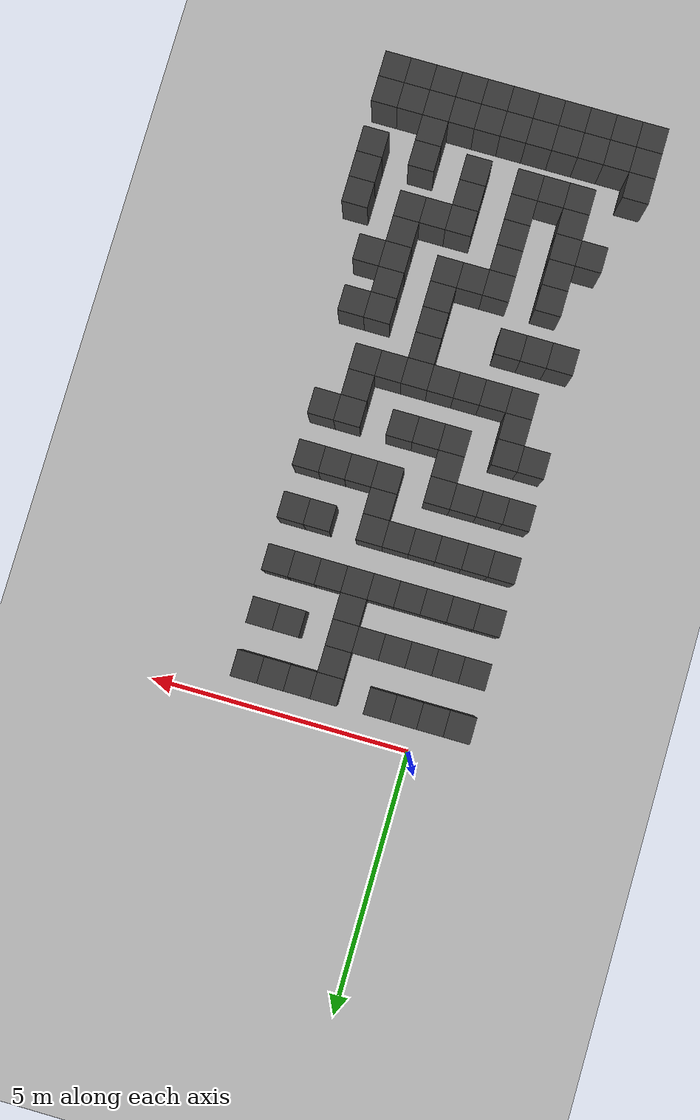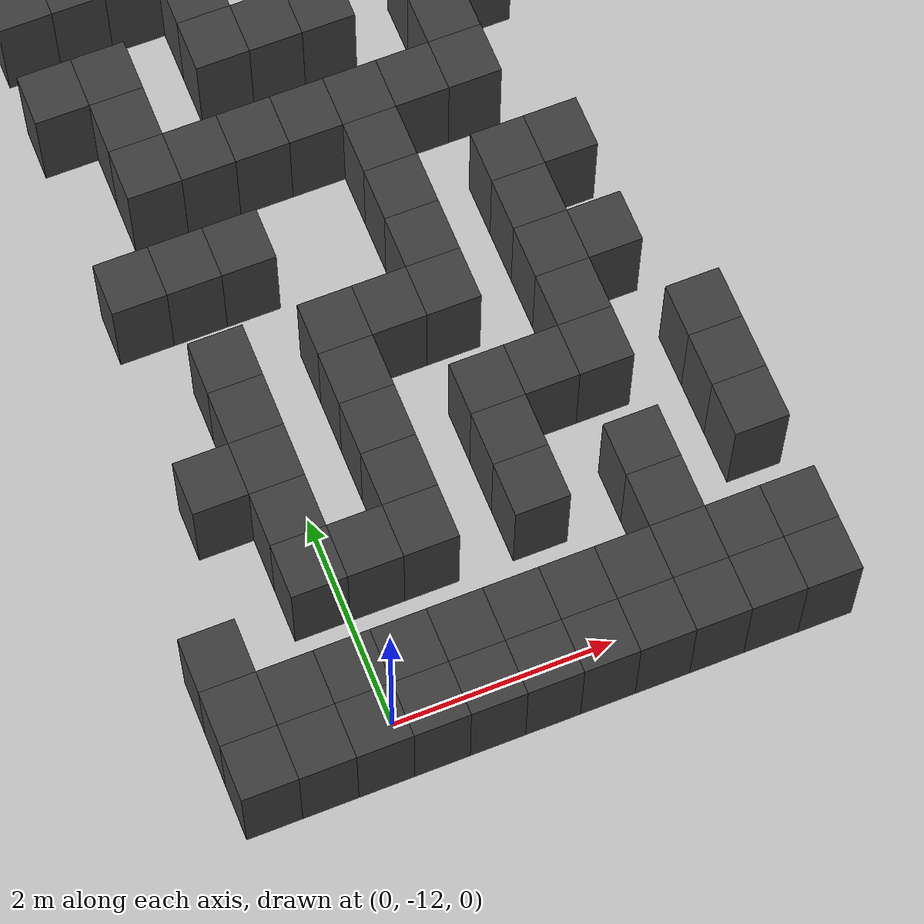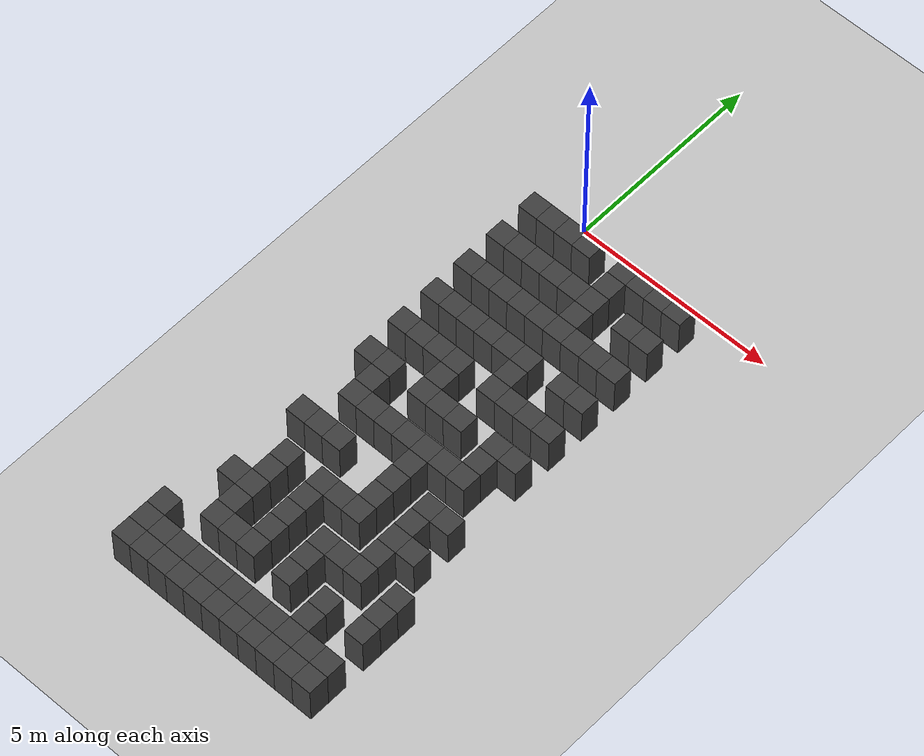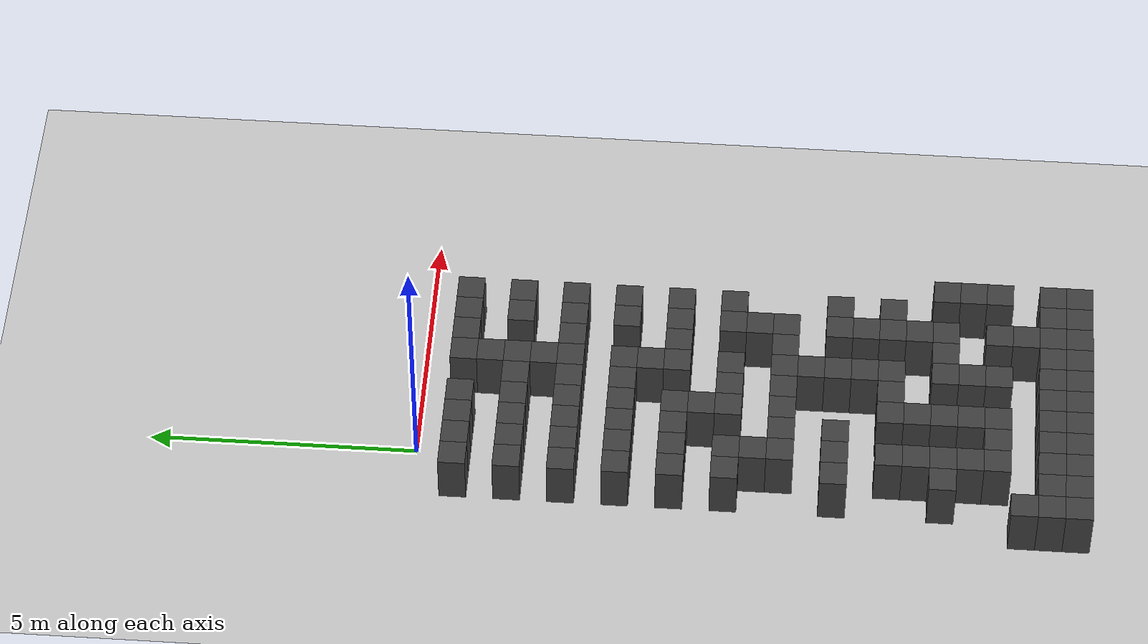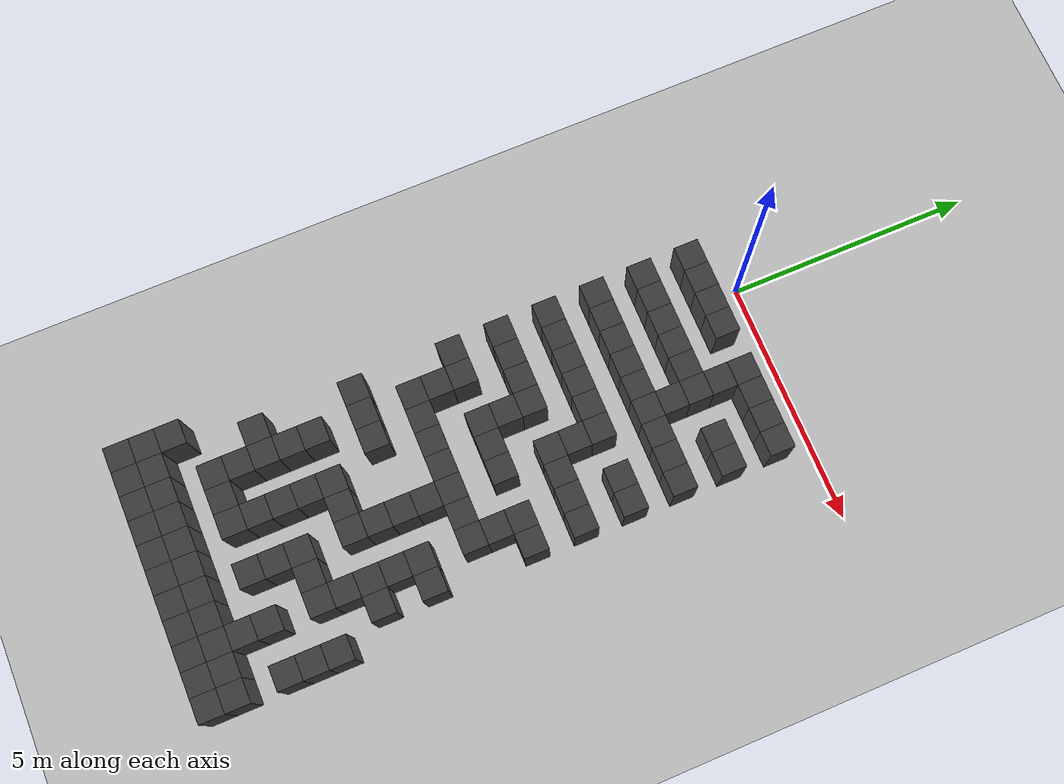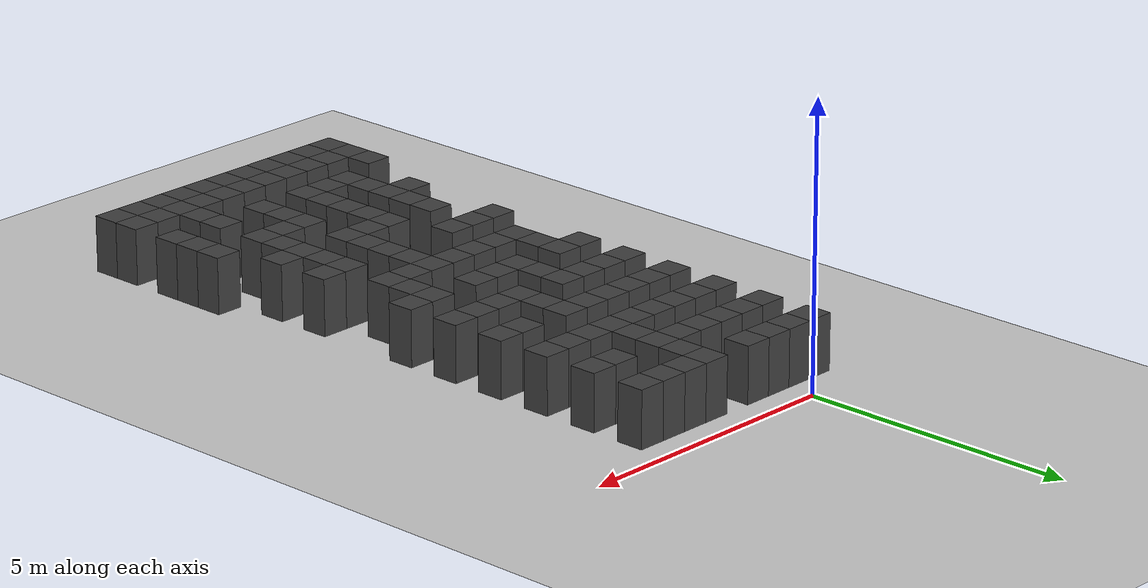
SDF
<sdf version="1.7">
 <world name="map_19217">
  <model name="ground_plane">
   <static>true</static>
   <link name="link">
    <collision name="collision">
     <geometry><plane><normal>0 0 1</normal><size>200 200</size></plane></geometry>
    </collision>
    <visual name="visual">
     <geometry><plane><normal>0 0 1</normal><size>200 200</size></plane></geometry>
     <material><ambient>0.8 0.8 0.8 1</ambient><diffuse>0.8 0.8 0.8 1</diffuse></material>
    </visual>
   </link>
  </model>
  <model name="maze_environment">
   <static>true</static>
   <link name="wall_683">
    <pose>-0.750 -0.750 0.500 0 0 0</pose>
    <collision name="col"><geometry><box><size>0.5 0.5 1.0</size></box></geometry></collision>
    <visual name="vis">
     <geometry><box><size>0.5 0.5 1.0</size></box></geometry>
     <material><ambient>0.15 0.15 0.15 1</ambient><diffuse>0.25 0.25 0.25 1</diffuse></material>
    </visual>
   </link>
   <link name="wall_684">
    <pose>-0.250 -0.750 0.500 0 0 0</pose>
    <collision name="col"><geometry><box><size>0.5 0.5 1.0</size></box></geometry></collision>
    <visual name="vis">
     <geometry><box><size>0.5 0.5 1.0</size></box></geometry>
     <material><ambient>0.15 0.15 0.15 1</ambient><diffuse>0.25 0.25 0.25 1</diffuse></material>
    </visual>
   </link>
   <link name="wall_685">
    <pose>0.250 -0.750 0.500 0 0 0</pose>
    <collision name="col"><geometry><box><size>0.5 0.5 1.0</size></box></geometry></collision>
    <visual name="vis">
     <geometry><box><size>0.5 0.5 1.0</size></box></geometry>
     <material><ambient>0.15 0.15 0.15 1</ambient><diffuse>0.25 0.25 0.25 1</diffuse></material>
    </visual>
   </link>
   <link name="wall_686">
    <pose>0.750 -0.750 0.500 0 0 0</pose>
    <collision name="col"><geometry><box><size>0.5 0.5 1.0</size></box></geometry></collision>
    <visual name="vis">
     <geometry><box><size>0.5 0.5 1.0</size></box></geometry>
     <material><ambient>0.15 0.15 0.15 1</ambient><diffuse>0.25 0.25 0.25 1</diffuse></material>
    </visual>
   </link>
   <link name="wall_687">
    <pose>1.750 -0.750 0.500 0 0 0</pose>
    <collision name="col"><geometry><box><size>0.5 0.5 1.0</size></box></geometry></collision>
    <visual name="vis">
     <geometry><box><size>0.5 0.5 1.0</size></box></geometry>
     <material><ambient>0.15 0.15 0.15 1</ambient><diffuse>0.25 0.25 0.25 1</diffuse></material>
    </visual>
   </link>
   <link name="wall_688">
    <pose>2.250 -0.750 0.500 0 0 0</pose>
    <collision name="col"><geometry><box><size>0.5 0.5 1.0</size></box></geometry></collision>
    <visual name="vis">
     <geometry><box><size>0.5 0.5 1.0</size></box></geometry>
     <material><ambient>0.15 0.15 0.15 1</ambient><diffuse>0.25 0.25 0.25 1</diffuse></material>
    </visual>
   </link>
   <link name="wall_689">
    <pose>2.750 -0.750 0.500 0 0 0</pose>
    <collision name="col"><geometry><box><size>0.5 0.5 1.0</size></box></geometry></collision>
    <visual name="vis">
     <geometry><box><size>0.5 0.5 1.0</size></box></geometry>
     <material><ambient>0.15 0.15 0.15 1</ambient><diffuse>0.25 0.25 0.25 1</diffuse></material>
    </visual>
   </link>
   <link name="wall_690">
    <pose>3.250 -0.750 0.500 0 0 0</pose>
    <collision name="col"><geometry><box><size>0.5 0.5 1.0</size></box></geometry></collision>
    <visual name="vis">
     <geometry><box><size>0.5 0.5 1.0</size></box></geometry>
     <material><ambient>0.15 0.15 0.15 1</ambient><diffuse>0.25 0.25 0.25 1</diffuse></material>
    </visual>
   </link>
   <link name="wall_713">
    <pose>1.750 -1.250 0.500 0 0 0</pose>
    <collision name="col"><geometry><box><size>0.5 0.5 1.0</size></box></geometry></collision>
    <visual name="vis">
     <geometry><box><size>0.5 0.5 1.0</size></box></geometry>
     <material><ambient>0.15 0.15 0.15 1</ambient><diffuse>0.25 0.25 0.25 1</diffuse></material>
    </visual>
   </link>
   <link name="wall_736">
    <pose>-0.750 -1.750 0.500 0 0 0</pose>
    <collision name="col"><geometry><box><size>0.5 0.5 1.0</size></box></geometry></collision>
    <visual name="vis">
     <geometry><box><size>0.5 0.5 1.0</size></box></geometry>
     <material><ambient>0.15 0.15 0.15 1</ambient><diffuse>0.25 0.25 0.25 1</diffuse></material>
    </visual>
   </link>
   <link name="wall_737">
    <pose>-0.250 -1.750 0.500 0 0 0</pose>
    <collision name="col"><geometry><box><size>0.5 0.5 1.0</size></box></geometry></collision>
    <visual name="vis">
     <geometry><box><size>0.5 0.5 1.0</size></box></geometry>
     <material><ambient>0.15 0.15 0.15 1</ambient><diffuse>0.25 0.25 0.25 1</diffuse></material>
    </visual>
   </link>
   <link name="wall_738">
    <pose>0.250 -1.750 0.500 0 0 0</pose>
    <collision name="col"><geometry><box><size>0.5 0.5 1.0</size></box></geometry></collision>
    <visual name="vis">
     <geometry><box><size>0.5 0.5 1.0</size></box></geometry>
     <material><ambient>0.15 0.15 0.15 1</ambient><diffuse>0.25 0.25 0.25 1</diffuse></material>
    </visual>
   </link>
   <link name="wall_739">
    <pose>0.750 -1.750 0.500 0 0 0</pose>
    <collision name="col"><geometry><box><size>0.5 0.5 1.0</size></box></geometry></collision>
    <visual name="vis">
     <geometry><box><size>0.5 0.5 1.0</size></box></geometry>
     <material><ambient>0.15 0.15 0.15 1</ambient><diffuse>0.25 0.25 0.25 1</diffuse></material>
    </visual>
   </link>
   <link name="wall_740">
    <pose>1.250 -1.750 0.500 0 0 0</pose>
    <collision name="col"><geometry><box><size>0.5 0.5 1.0</size></box></geometry></collision>
    <visual name="vis">
     <geometry><box><size>0.5 0.5 1.0</size></box></geometry>
     <material><ambient>0.15 0.15 0.15 1</ambient><diffuse>0.25 0.25 0.25 1</diffuse></material>
    </visual>
   </link>
   <link name="wall_741">
    <pose>1.750 -1.750 0.500 0 0 0</pose>
    <collision name="col"><geometry><box><size>0.5 0.5 1.0</size></box></geometry></collision>
    <visual name="vis">
     <geometry><box><size>0.5 0.5 1.0</size></box></geometry>
     <material><ambient>0.15 0.15 0.15 1</ambient><diffuse>0.25 0.25 0.25 1</diffuse></material>
    </visual>
   </link>
   <link name="wall_742">
    <pose>2.750 -1.750 0.500 0 0 0</pose>
    <collision name="col"><geometry><box><size>0.5 0.5 1.0</size></box></geometry></collision>
    <visual name="vis">
     <geometry><box><size>0.5 0.5 1.0</size></box></geometry>
     <material><ambient>0.15 0.15 0.15 1</ambient><diffuse>0.25 0.25 0.25 1</diffuse></material>
    </visual>
   </link>
   <link name="wall_743">
    <pose>3.250 -1.750 0.500 0 0 0</pose>
    <collision name="col"><geometry><box><size>0.5 0.5 1.0</size></box></geometry></collision>
    <visual name="vis">
     <geometry><box><size>0.5 0.5 1.0</size></box></geometry>
     <material><ambient>0.15 0.15 0.15 1</ambient><diffuse>0.25 0.25 0.25 1</diffuse></material>
    </visual>
   </link>
   <link name="wall_762">
    <pose>1.750 -2.250 0.500 0 0 0</pose>
    <collision name="col"><geometry><box><size>0.5 0.5 1.0</size></box></geometry></collision>
    <visual name="vis">
     <geometry><box><size>0.5 0.5 1.0</size></box></geometry>
     <material><ambient>0.15 0.15 0.15 1</ambient><diffuse>0.25 0.25 0.25 1</diffuse></material>
    </visual>
   </link>
   <link name="wall_785">
    <pose>-0.750 -2.750 0.500 0 0 0</pose>
    <collision name="col"><geometry><box><size>0.5 0.5 1.0</size></box></geometry></collision>
    <visual name="vis">
     <geometry><box><size>0.5 0.5 1.0</size></box></geometry>
     <material><ambient>0.15 0.15 0.15 1</ambient><diffuse>0.25 0.25 0.25 1</diffuse></material>
    </visual>
   </link>
   <link name="wall_786">
    <pose>-0.250 -2.750 0.500 0 0 0</pose>
    <collision name="col"><geometry><box><size>0.5 0.5 1.0</size></box></geometry></collision>
    <visual name="vis">
     <geometry><box><size>0.5 0.5 1.0</size></box></geometry>
     <material><ambient>0.15 0.15 0.15 1</ambient><diffuse>0.25 0.25 0.25 1</diffuse></material>
    </visual>
   </link>
   <link name="wall_787">
    <pose>0.250 -2.750 0.500 0 0 0</pose>
    <collision name="col"><geometry><box><size>0.5 0.5 1.0</size></box></geometry></collision>
    <visual name="vis">
     <geometry><box><size>0.5 0.5 1.0</size></box></geometry>
     <material><ambient>0.15 0.15 0.15 1</ambient><diffuse>0.25 0.25 0.25 1</diffuse></material>
    </visual>
   </link>
   <link name="wall_788">
    <pose>0.750 -2.750 0.500 0 0 0</pose>
    <collision name="col"><geometry><box><size>0.5 0.5 1.0</size></box></geometry></collision>
    <visual name="vis">
     <geometry><box><size>0.5 0.5 1.0</size></box></geometry>
     <material><ambient>0.15 0.15 0.15 1</ambient><diffuse>0.25 0.25 0.25 1</diffuse></material>
    </visual>
   </link>
   <link name="wall_789">
    <pose>1.250 -2.750 0.500 0 0 0</pose>
    <collision name="col"><geometry><box><size>0.5 0.5 1.0</size></box></geometry></collision>
    <visual name="vis">
     <geometry><box><size>0.5 0.5 1.0</size></box></geometry>
     <material><ambient>0.15 0.15 0.15 1</ambient><diffuse>0.25 0.25 0.25 1</diffuse></material>
    </visual>
   </link>
   <link name="wall_790">
    <pose>1.750 -2.750 0.500 0 0 0</pose>
    <collision name="col"><geometry><box><size>0.5 0.5 1.0</size></box></geometry></collision>
    <visual name="vis">
     <geometry><box><size>0.5 0.5 1.0</size></box></geometry>
     <material><ambient>0.15 0.15 0.15 1</ambient><diffuse>0.25 0.25 0.25 1</diffuse></material>
    </visual>
   </link>
   <link name="wall_791">
    <pose>2.250 -2.750 0.500 0 0 0</pose>
    <collision name="col"><geometry><box><size>0.5 0.5 1.0</size></box></geometry></collision>
    <visual name="vis">
     <geometry><box><size>0.5 0.5 1.0</size></box></geometry>
     <material><ambient>0.15 0.15 0.15 1</ambient><diffuse>0.25 0.25 0.25 1</diffuse></material>
    </visual>
   </link>
   <link name="wall_792">
    <pose>2.750 -2.750 0.500 0 0 0</pose>
    <collision name="col"><geometry><box><size>0.5 0.5 1.0</size></box></geometry></collision>
    <visual name="vis">
     <geometry><box><size>0.5 0.5 1.0</size></box></geometry>
     <material><ambient>0.15 0.15 0.15 1</ambient><diffuse>0.25 0.25 0.25 1</diffuse></material>
    </visual>
   </link>
   <link name="wall_793">
    <pose>3.250 -2.750 0.500 0 0 0</pose>
    <collision name="col"><geometry><box><size>0.5 0.5 1.0</size></box></geometry></collision>
    <visual name="vis">
     <geometry><box><size>0.5 0.5 1.0</size></box></geometry>
     <material><ambient>0.15 0.15 0.15 1</ambient><diffuse>0.25 0.25 0.25 1</diffuse></material>
    </visual>
   </link>
   <link name="wall_839">
    <pose>-0.750 -3.750 0.500 0 0 0</pose>
    <collision name="col"><geometry><box><size>0.5 0.5 1.0</size></box></geometry></collision>
    <visual name="vis">
     <geometry><box><size>0.5 0.5 1.0</size></box></geometry>
     <material><ambient>0.15 0.15 0.15 1</ambient><diffuse>0.25 0.25 0.25 1</diffuse></material>
    </visual>
   </link>
   <link name="wall_840">
    <pose>-0.250 -3.750 0.500 0 0 0</pose>
    <collision name="col"><geometry><box><size>0.5 0.5 1.0</size></box></geometry></collision>
    <visual name="vis">
     <geometry><box><size>0.5 0.5 1.0</size></box></geometry>
     <material><ambient>0.15 0.15 0.15 1</ambient><diffuse>0.25 0.25 0.25 1</diffuse></material>
    </visual>
   </link>
   <link name="wall_841">
    <pose>0.250 -3.750 0.500 0 0 0</pose>
    <collision name="col"><geometry><box><size>0.5 0.5 1.0</size></box></geometry></collision>
    <visual name="vis">
     <geometry><box><size>0.5 0.5 1.0</size></box></geometry>
     <material><ambient>0.15 0.15 0.15 1</ambient><diffuse>0.25 0.25 0.25 1</diffuse></material>
    </visual>
   </link>
   <link name="wall_842">
    <pose>0.750 -3.750 0.500 0 0 0</pose>
    <collision name="col"><geometry><box><size>0.5 0.5 1.0</size></box></geometry></collision>
    <visual name="vis">
     <geometry><box><size>0.5 0.5 1.0</size></box></geometry>
     <material><ambient>0.15 0.15 0.15 1</ambient><diffuse>0.25 0.25 0.25 1</diffuse></material>
    </visual>
   </link>
   <link name="wall_843">
    <pose>1.250 -3.750 0.500 0 0 0</pose>
    <collision name="col"><geometry><box><size>0.5 0.5 1.0</size></box></geometry></collision>
    <visual name="vis">
     <geometry><box><size>0.5 0.5 1.0</size></box></geometry>
     <material><ambient>0.15 0.15 0.15 1</ambient><diffuse>0.25 0.25 0.25 1</diffuse></material>
    </visual>
   </link>
   <link name="wall_844">
    <pose>1.750 -3.750 0.500 0 0 0</pose>
    <collision name="col"><geometry><box><size>0.5 0.5 1.0</size></box></geometry></collision>
    <visual name="vis">
     <geometry><box><size>0.5 0.5 1.0</size></box></geometry>
     <material><ambient>0.15 0.15 0.15 1</ambient><diffuse>0.25 0.25 0.25 1</diffuse></material>
    </visual>
   </link>
   <link name="wall_845">
    <pose>2.750 -3.750 0.500 0 0 0</pose>
    <collision name="col"><geometry><box><size>0.5 0.5 1.0</size></box></geometry></collision>
    <visual name="vis">
     <geometry><box><size>0.5 0.5 1.0</size></box></geometry>
     <material><ambient>0.15 0.15 0.15 1</ambient><diffuse>0.25 0.25 0.25 1</diffuse></material>
    </visual>
   </link>
   <link name="wall_846">
    <pose>3.250 -3.750 0.500 0 0 0</pose>
    <collision name="col"><geometry><box><size>0.5 0.5 1.0</size></box></geometry></collision>
    <visual name="vis">
     <geometry><box><size>0.5 0.5 1.0</size></box></geometry>
     <material><ambient>0.15 0.15 0.15 1</ambient><diffuse>0.25 0.25 0.25 1</diffuse></material>
    </visual>
   </link>
   <link name="wall_863">
    <pose>1.750 -4.250 0.500 0 0 0</pose>
    <collision name="col"><geometry><box><size>0.5 0.5 1.0</size></box></geometry></collision>
    <visual name="vis">
     <geometry><box><size>0.5 0.5 1.0</size></box></geometry>
     <material><ambient>0.15 0.15 0.15 1</ambient><diffuse>0.25 0.25 0.25 1</diffuse></material>
    </visual>
   </link>
   <link name="wall_888">
    <pose>-0.750 -4.750 0.500 0 0 0</pose>
    <collision name="col"><geometry><box><size>0.5 0.5 1.0</size></box></geometry></collision>
    <visual name="vis">
     <geometry><box><size>0.5 0.5 1.0</size></box></geometry>
     <material><ambient>0.15 0.15 0.15 1</ambient><diffuse>0.25 0.25 0.25 1</diffuse></material>
    </visual>
   </link>
   <link name="wall_889">
    <pose>-0.250 -4.750 0.500 0 0 0</pose>
    <collision name="col"><geometry><box><size>0.5 0.5 1.0</size></box></geometry></collision>
    <visual name="vis">
     <geometry><box><size>0.5 0.5 1.0</size></box></geometry>
     <material><ambient>0.15 0.15 0.15 1</ambient><diffuse>0.25 0.25 0.25 1</diffuse></material>
    </visual>
   </link>
   <link name="wall_890">
    <pose>0.250 -4.750 0.500 0 0 0</pose>
    <collision name="col"><geometry><box><size>0.5 0.5 1.0</size></box></geometry></collision>
    <visual name="vis">
     <geometry><box><size>0.5 0.5 1.0</size></box></geometry>
     <material><ambient>0.15 0.15 0.15 1</ambient><diffuse>0.25 0.25 0.25 1</diffuse></material>
    </visual>
   </link>
   <link name="wall_891">
    <pose>0.750 -4.750 0.500 0 0 0</pose>
    <collision name="col"><geometry><box><size>0.5 0.5 1.0</size></box></geometry></collision>
    <visual name="vis">
     <geometry><box><size>0.5 0.5 1.0</size></box></geometry>
     <material><ambient>0.15 0.15 0.15 1</ambient><diffuse>0.25 0.25 0.25 1</diffuse></material>
    </visual>
   </link>
   <link name="wall_892">
    <pose>1.750 -4.750 0.500 0 0 0</pose>
    <collision name="col"><geometry><box><size>0.5 0.5 1.0</size></box></geometry></collision>
    <visual name="vis">
     <geometry><box><size>0.5 0.5 1.0</size></box></geometry>
     <material><ambient>0.15 0.15 0.15 1</ambient><diffuse>0.25 0.25 0.25 1</diffuse></material>
    </visual>
   </link>
   <link name="wall_893">
    <pose>2.250 -4.750 0.500 0 0 0</pose>
    <collision name="col"><geometry><box><size>0.5 0.5 1.0</size></box></geometry></collision>
    <visual name="vis">
     <geometry><box><size>0.5 0.5 1.0</size></box></geometry>
     <material><ambient>0.15 0.15 0.15 1</ambient><diffuse>0.25 0.25 0.25 1</diffuse></material>
    </visual>
   </link>
   <link name="wall_894">
    <pose>2.750 -4.750 0.500 0 0 0</pose>
    <collision name="col"><geometry><box><size>0.5 0.5 1.0</size></box></geometry></collision>
    <visual name="vis">
     <geometry><box><size>0.5 0.5 1.0</size></box></geometry>
     <material><ambient>0.15 0.15 0.15 1</ambient><diffuse>0.25 0.25 0.25 1</diffuse></material>
    </visual>
   </link>
   <link name="wall_895">
    <pose>3.250 -4.750 0.500 0 0 0</pose>
    <collision name="col"><geometry><box><size>0.5 0.5 1.0</size></box></geometry></collision>
    <visual name="vis">
     <geometry><box><size>0.5 0.5 1.0</size></box></geometry>
     <material><ambient>0.15 0.15 0.15 1</ambient><diffuse>0.25 0.25 0.25 1</diffuse></material>
    </visual>
   </link>
   <link name="wall_915">
    <pose>0.750 -5.250 0.500 0 0 0</pose>
    <collision name="col"><geometry><box><size>0.5 0.5 1.0</size></box></geometry></collision>
    <visual name="vis">
     <geometry><box><size>0.5 0.5 1.0</size></box></geometry>
     <material><ambient>0.15 0.15 0.15 1</ambient><diffuse>0.25 0.25 0.25 1</diffuse></material>
    </visual>
   </link>
   <link name="wall_940">
    <pose>-0.750 -5.750 0.500 0 0 0</pose>
    <collision name="col"><geometry><box><size>0.5 0.5 1.0</size></box></geometry></collision>
    <visual name="vis">
     <geometry><box><size>0.5 0.5 1.0</size></box></geometry>
     <material><ambient>0.15 0.15 0.15 1</ambient><diffuse>0.25 0.25 0.25 1</diffuse></material>
    </visual>
   </link>
   <link name="wall_941">
    <pose>-0.250 -5.750 0.500 0 0 0</pose>
    <collision name="col"><geometry><box><size>0.5 0.5 1.0</size></box></geometry></collision>
    <visual name="vis">
     <geometry><box><size>0.5 0.5 1.0</size></box></geometry>
     <material><ambient>0.15 0.15 0.15 1</ambient><diffuse>0.25 0.25 0.25 1</diffuse></material>
    </visual>
   </link>
   <link name="wall_942">
    <pose>0.750 -5.750 0.500 0 0 0</pose>
    <collision name="col"><geometry><box><size>0.5 0.5 1.0</size></box></geometry></collision>
    <visual name="vis">
     <geometry><box><size>0.5 0.5 1.0</size></box></geometry>
     <material><ambient>0.15 0.15 0.15 1</ambient><diffuse>0.25 0.25 0.25 1</diffuse></material>
    </visual>
   </link>
   <link name="wall_943">
    <pose>1.250 -5.750 0.500 0 0 0</pose>
    <collision name="col"><geometry><box><size>0.5 0.5 1.0</size></box></geometry></collision>
    <visual name="vis">
     <geometry><box><size>0.5 0.5 1.0</size></box></geometry>
     <material><ambient>0.15 0.15 0.15 1</ambient><diffuse>0.25 0.25 0.25 1</diffuse></material>
    </visual>
   </link>
   <link name="wall_944">
    <pose>1.750 -5.750 0.500 0 0 0</pose>
    <collision name="col"><geometry><box><size>0.5 0.5 1.0</size></box></geometry></collision>
    <visual name="vis">
     <geometry><box><size>0.5 0.5 1.0</size></box></geometry>
     <material><ambient>0.15 0.15 0.15 1</ambient><diffuse>0.25 0.25 0.25 1</diffuse></material>
    </visual>
   </link>
   <link name="wall_945">
    <pose>2.750 -5.750 0.500 0 0 0</pose>
    <collision name="col"><geometry><box><size>0.5 0.5 1.0</size></box></geometry></collision>
    <visual name="vis">
     <geometry><box><size>0.5 0.5 1.0</size></box></geometry>
     <material><ambient>0.15 0.15 0.15 1</ambient><diffuse>0.25 0.25 0.25 1</diffuse></material>
    </visual>
   </link>
   <link name="wall_946">
    <pose>3.250 -5.750 0.500 0 0 0</pose>
    <collision name="col"><geometry><box><size>0.5 0.5 1.0</size></box></geometry></collision>
    <visual name="vis">
     <geometry><box><size>0.5 0.5 1.0</size></box></geometry>
     <material><ambient>0.15 0.15 0.15 1</ambient><diffuse>0.25 0.25 0.25 1</diffuse></material>
    </visual>
   </link>
   <link name="wall_966">
    <pose>-0.250 -6.250 0.500 0 0 0</pose>
    <collision name="col"><geometry><box><size>0.5 0.5 1.0</size></box></geometry></collision>
    <visual name="vis">
     <geometry><box><size>0.5 0.5 1.0</size></box></geometry>
     <material><ambient>0.15 0.15 0.15 1</ambient><diffuse>0.25 0.25 0.25 1</diffuse></material>
    </visual>
   </link>
   <link name="wall_967">
    <pose>2.750 -6.250 0.500 0 0 0</pose>
    <collision name="col"><geometry><box><size>0.5 0.5 1.0</size></box></geometry></collision>
    <visual name="vis">
     <geometry><box><size>0.5 0.5 1.0</size></box></geometry>
     <material><ambient>0.15 0.15 0.15 1</ambient><diffuse>0.25 0.25 0.25 1</diffuse></material>
    </visual>
   </link>
   <link name="wall_987">
    <pose>-0.250 -6.750 0.500 0 0 0</pose>
    <collision name="col"><geometry><box><size>0.5 0.5 1.0</size></box></geometry></collision>
    <visual name="vis">
     <geometry><box><size>0.5 0.5 1.0</size></box></geometry>
     <material><ambient>0.15 0.15 0.15 1</ambient><diffuse>0.25 0.25 0.25 1</diffuse></material>
    </visual>
   </link>
   <link name="wall_988">
    <pose>0.250 -6.750 0.500 0 0 0</pose>
    <collision name="col"><geometry><box><size>0.5 0.5 1.0</size></box></geometry></collision>
    <visual name="vis">
     <geometry><box><size>0.5 0.5 1.0</size></box></geometry>
     <material><ambient>0.15 0.15 0.15 1</ambient><diffuse>0.25 0.25 0.25 1</diffuse></material>
    </visual>
   </link>
   <link name="wall_989">
    <pose>0.750 -6.750 0.500 0 0 0</pose>
    <collision name="col"><geometry><box><size>0.5 0.5 1.0</size></box></geometry></collision>
    <visual name="vis">
     <geometry><box><size>0.5 0.5 1.0</size></box></geometry>
     <material><ambient>0.15 0.15 0.15 1</ambient><diffuse>0.25 0.25 0.25 1</diffuse></material>
    </visual>
   </link>
   <link name="wall_990">
    <pose>1.250 -6.750 0.500 0 0 0</pose>
    <collision name="col"><geometry><box><size>0.5 0.5 1.0</size></box></geometry></collision>
    <visual name="vis">
     <geometry><box><size>0.5 0.5 1.0</size></box></geometry>
     <material><ambient>0.15 0.15 0.15 1</ambient><diffuse>0.25 0.25 0.25 1</diffuse></material>
    </visual>
   </link>
   <link name="wall_991">
    <pose>1.750 -6.750 0.500 0 0 0</pose>
    <collision name="col"><geometry><box><size>0.5 0.5 1.0</size></box></geometry></collision>
    <visual name="vis">
     <geometry><box><size>0.5 0.5 1.0</size></box></geometry>
     <material><ambient>0.15 0.15 0.15 1</ambient><diffuse>0.25 0.25 0.25 1</diffuse></material>
    </visual>
   </link>
   <link name="wall_992">
    <pose>2.250 -6.750 0.500 0 0 0</pose>
    <collision name="col"><geometry><box><size>0.5 0.5 1.0</size></box></geometry></collision>
    <visual name="vis">
     <geometry><box><size>0.5 0.5 1.0</size></box></geometry>
     <material><ambient>0.15 0.15 0.15 1</ambient><diffuse>0.25 0.25 0.25 1</diffuse></material>
    </visual>
   </link>
   <link name="wall_993">
    <pose>2.750 -6.750 0.500 0 0 0</pose>
    <collision name="col"><geometry><box><size>0.5 0.5 1.0</size></box></geometry></collision>
    <visual name="vis">
     <geometry><box><size>0.5 0.5 1.0</size></box></geometry>
     <material><ambient>0.15 0.15 0.15 1</ambient><diffuse>0.25 0.25 0.25 1</diffuse></material>
    </visual>
   </link>
   <link name="wall_1016">
    <pose>1.750 -7.250 0.500 0 0 0</pose>
    <collision name="col"><geometry><box><size>0.5 0.5 1.0</size></box></geometry></collision>
    <visual name="vis">
     <geometry><box><size>0.5 0.5 1.0</size></box></geometry>
     <material><ambient>0.15 0.15 0.15 1</ambient><diffuse>0.25 0.25 0.25 1</diffuse></material>
    </visual>
   </link>
   <link name="wall_1038">
    <pose>-0.750 -7.750 0.500 0 0 0</pose>
    <collision name="col"><geometry><box><size>0.5 0.5 1.0</size></box></geometry></collision>
    <visual name="vis">
     <geometry><box><size>0.5 0.5 1.0</size></box></geometry>
     <material><ambient>0.15 0.15 0.15 1</ambient><diffuse>0.25 0.25 0.25 1</diffuse></material>
    </visual>
   </link>
   <link name="wall_1039">
    <pose>-0.250 -7.750 0.500 0 0 0</pose>
    <collision name="col"><geometry><box><size>0.5 0.5 1.0</size></box></geometry></collision>
    <visual name="vis">
     <geometry><box><size>0.5 0.5 1.0</size></box></geometry>
     <material><ambient>0.15 0.15 0.15 1</ambient><diffuse>0.25 0.25 0.25 1</diffuse></material>
    </visual>
   </link>
   <link name="wall_1040">
    <pose>0.250 -7.750 0.500 0 0 0</pose>
    <collision name="col"><geometry><box><size>0.5 0.5 1.0</size></box></geometry></collision>
    <visual name="vis">
     <geometry><box><size>0.5 0.5 1.0</size></box></geometry>
     <material><ambient>0.15 0.15 0.15 1</ambient><diffuse>0.25 0.25 0.25 1</diffuse></material>
    </visual>
   </link>
   <link name="wall_1041">
    <pose>1.750 -7.750 0.500 0 0 0</pose>
    <collision name="col"><geometry><box><size>0.5 0.5 1.0</size></box></geometry></collision>
    <visual name="vis">
     <geometry><box><size>0.5 0.5 1.0</size></box></geometry>
     <material><ambient>0.15 0.15 0.15 1</ambient><diffuse>0.25 0.25 0.25 1</diffuse></material>
    </visual>
   </link>
   <link name="wall_1042">
    <pose>2.750 -7.750 0.500 0 0 0</pose>
    <collision name="col"><geometry><box><size>0.5 0.5 1.0</size></box></geometry></collision>
    <visual name="vis">
     <geometry><box><size>0.5 0.5 1.0</size></box></geometry>
     <material><ambient>0.15 0.15 0.15 1</ambient><diffuse>0.25 0.25 0.25 1</diffuse></material>
    </visual>
   </link>
   <link name="wall_1043">
    <pose>3.250 -7.750 0.500 0 0 0</pose>
    <collision name="col"><geometry><box><size>0.5 0.5 1.0</size></box></geometry></collision>
    <visual name="vis">
     <geometry><box><size>0.5 0.5 1.0</size></box></geometry>
     <material><ambient>0.15 0.15 0.15 1</ambient><diffuse>0.25 0.25 0.25 1</diffuse></material>
    </visual>
   </link>
   <link name="wall_1066">
    <pose>1.750 -8.250 0.500 0 0 0</pose>
    <collision name="col"><geometry><box><size>0.5 0.5 1.0</size></box></geometry></collision>
    <visual name="vis">
     <geometry><box><size>0.5 0.5 1.0</size></box></geometry>
     <material><ambient>0.15 0.15 0.15 1</ambient><diffuse>0.25 0.25 0.25 1</diffuse></material>
    </visual>
   </link>
   <link name="wall_1067">
    <pose>2.750 -8.250 0.500 0 0 0</pose>
    <collision name="col"><geometry><box><size>0.5 0.5 1.0</size></box></geometry></collision>
    <visual name="vis">
     <geometry><box><size>0.5 0.5 1.0</size></box></geometry>
     <material><ambient>0.15 0.15 0.15 1</ambient><diffuse>0.25 0.25 0.25 1</diffuse></material>
    </visual>
   </link>
   <link name="wall_1092">
    <pose>-0.250 -8.750 0.500 0 0 0</pose>
    <collision name="col"><geometry><box><size>0.5 0.5 1.0</size></box></geometry></collision>
    <visual name="vis">
     <geometry><box><size>0.5 0.5 1.0</size></box></geometry>
     <material><ambient>0.15 0.15 0.15 1</ambient><diffuse>0.25 0.25 0.25 1</diffuse></material>
    </visual>
   </link>
   <link name="wall_1093">
    <pose>0.750 -8.750 0.500 0 0 0</pose>
    <collision name="col"><geometry><box><size>0.5 0.5 1.0</size></box></geometry></collision>
    <visual name="vis">
     <geometry><box><size>0.5 0.5 1.0</size></box></geometry>
     <material><ambient>0.15 0.15 0.15 1</ambient><diffuse>0.25 0.25 0.25 1</diffuse></material>
    </visual>
   </link>
   <link name="wall_1094">
    <pose>1.250 -8.750 0.500 0 0 0</pose>
    <collision name="col"><geometry><box><size>0.5 0.5 1.0</size></box></geometry></collision>
    <visual name="vis">
     <geometry><box><size>0.5 0.5 1.0</size></box></geometry>
     <material><ambient>0.15 0.15 0.15 1</ambient><diffuse>0.25 0.25 0.25 1</diffuse></material>
    </visual>
   </link>
   <link name="wall_1095">
    <pose>1.750 -8.750 0.500 0 0 0</pose>
    <collision name="col"><geometry><box><size>0.5 0.5 1.0</size></box></geometry></collision>
    <visual name="vis">
     <geometry><box><size>0.5 0.5 1.0</size></box></geometry>
     <material><ambient>0.15 0.15 0.15 1</ambient><diffuse>0.25 0.25 0.25 1</diffuse></material>
    </visual>
   </link>
   <link name="wall_1096">
    <pose>2.750 -8.750 0.500 0 0 0</pose>
    <collision name="col"><geometry><box><size>0.5 0.5 1.0</size></box></geometry></collision>
    <visual name="vis">
     <geometry><box><size>0.5 0.5 1.0</size></box></geometry>
     <material><ambient>0.15 0.15 0.15 1</ambient><diffuse>0.25 0.25 0.25 1</diffuse></material>
    </visual>
   </link>
   <link name="wall_1097">
    <pose>3.250 -8.750 0.500 0 0 0</pose>
    <collision name="col"><geometry><box><size>0.5 0.5 1.0</size></box></geometry></collision>
    <visual name="vis">
     <geometry><box><size>0.5 0.5 1.0</size></box></geometry>
     <material><ambient>0.15 0.15 0.15 1</ambient><diffuse>0.25 0.25 0.25 1</diffuse></material>
    </visual>
   </link>
   <link name="wall_1118">
    <pose>-0.250 -9.250 0.500 0 0 0</pose>
    <collision name="col"><geometry><box><size>0.5 0.5 1.0</size></box></geometry></collision>
    <visual name="vis">
     <geometry><box><size>0.5 0.5 1.0</size></box></geometry>
     <material><ambient>0.15 0.15 0.15 1</ambient><diffuse>0.25 0.25 0.25 1</diffuse></material>
    </visual>
   </link>
   <link name="wall_1119">
    <pose>0.750 -9.250 0.500 0 0 0</pose>
    <collision name="col"><geometry><box><size>0.5 0.5 1.0</size></box></geometry></collision>
    <visual name="vis">
     <geometry><box><size>0.5 0.5 1.0</size></box></geometry>
     <material><ambient>0.15 0.15 0.15 1</ambient><diffuse>0.25 0.25 0.25 1</diffuse></material>
    </visual>
   </link>
   <link name="wall_1120">
    <pose>2.750 -9.250 0.500 0 0 0</pose>
    <collision name="col"><geometry><box><size>0.5 0.5 1.0</size></box></geometry></collision>
    <visual name="vis">
     <geometry><box><size>0.5 0.5 1.0</size></box></geometry>
     <material><ambient>0.15 0.15 0.15 1</ambient><diffuse>0.25 0.25 0.25 1</diffuse></material>
    </visual>
   </link>
   <link name="wall_1144">
    <pose>-0.750 -9.750 0.500 0 0 0</pose>
    <collision name="col"><geometry><box><size>0.5 0.5 1.0</size></box></geometry></collision>
    <visual name="vis">
     <geometry><box><size>0.5 0.5 1.0</size></box></geometry>
     <material><ambient>0.15 0.15 0.15 1</ambient><diffuse>0.25 0.25 0.25 1</diffuse></material>
    </visual>
   </link>
   <link name="wall_1145">
    <pose>-0.250 -9.750 0.500 0 0 0</pose>
    <collision name="col"><geometry><box><size>0.5 0.5 1.0</size></box></geometry></collision>
    <visual name="vis">
     <geometry><box><size>0.5 0.5 1.0</size></box></geometry>
     <material><ambient>0.15 0.15 0.15 1</ambient><diffuse>0.25 0.25 0.25 1</diffuse></material>
    </visual>
   </link>
   <link name="wall_1146">
    <pose>0.750 -9.750 0.500 0 0 0</pose>
    <collision name="col"><geometry><box><size>0.5 0.5 1.0</size></box></geometry></collision>
    <visual name="vis">
     <geometry><box><size>0.5 0.5 1.0</size></box></geometry>
     <material><ambient>0.15 0.15 0.15 1</ambient><diffuse>0.25 0.25 0.25 1</diffuse></material>
    </visual>
   </link>
   <link name="wall_1147">
    <pose>1.750 -9.750 0.500 0 0 0</pose>
    <collision name="col"><geometry><box><size>0.5 0.5 1.0</size></box></geometry></collision>
    <visual name="vis">
     <geometry><box><size>0.5 0.5 1.0</size></box></geometry>
     <material><ambient>0.15 0.15 0.15 1</ambient><diffuse>0.25 0.25 0.25 1</diffuse></material>
    </visual>
   </link>
   <link name="wall_1148">
    <pose>2.250 -9.750 0.500 0 0 0</pose>
    <collision name="col"><geometry><box><size>0.5 0.5 1.0</size></box></geometry></collision>
    <visual name="vis">
     <geometry><box><size>0.5 0.5 1.0</size></box></geometry>
     <material><ambient>0.15 0.15 0.15 1</ambient><diffuse>0.25 0.25 0.25 1</diffuse></material>
    </visual>
   </link>
   <link name="wall_1149">
    <pose>2.750 -9.750 0.500 0 0 0</pose>
    <collision name="col"><geometry><box><size>0.5 0.5 1.0</size></box></geometry></collision>
    <visual name="vis">
     <geometry><box><size>0.5 0.5 1.0</size></box></geometry>
     <material><ambient>0.15 0.15 0.15 1</ambient><diffuse>0.25 0.25 0.25 1</diffuse></material>
    </visual>
   </link>
   <link name="wall_1150">
    <pose>3.750 -9.750 0.500 0 0 0</pose>
    <collision name="col"><geometry><box><size>0.5 0.5 1.0</size></box></geometry></collision>
    <visual name="vis">
     <geometry><box><size>0.5 0.5 1.0</size></box></geometry>
     <material><ambient>0.15 0.15 0.15 1</ambient><diffuse>0.25 0.25 0.25 1</diffuse></material>
    </visual>
   </link>
   <link name="wall_1169">
    <pose>-0.250 -10.250 0.500 0 0 0</pose>
    <collision name="col"><geometry><box><size>0.5 0.5 1.0</size></box></geometry></collision>
    <visual name="vis">
     <geometry><box><size>0.5 0.5 1.0</size></box></geometry>
     <material><ambient>0.15 0.15 0.15 1</ambient><diffuse>0.25 0.25 0.25 1</diffuse></material>
    </visual>
   </link>
   <link name="wall_1170">
    <pose>0.750 -10.250 0.500 0 0 0</pose>
    <collision name="col"><geometry><box><size>0.5 0.5 1.0</size></box></geometry></collision>
    <visual name="vis">
     <geometry><box><size>0.5 0.5 1.0</size></box></geometry>
     <material><ambient>0.15 0.15 0.15 1</ambient><diffuse>0.25 0.25 0.25 1</diffuse></material>
    </visual>
   </link>
   <link name="wall_1171">
    <pose>1.750 -10.250 0.500 0 0 0</pose>
    <collision name="col"><geometry><box><size>0.5 0.5 1.0</size></box></geometry></collision>
    <visual name="vis">
     <geometry><box><size>0.5 0.5 1.0</size></box></geometry>
     <material><ambient>0.15 0.15 0.15 1</ambient><diffuse>0.25 0.25 0.25 1</diffuse></material>
    </visual>
   </link>
   <link name="wall_1172">
    <pose>3.750 -10.250 0.500 0 0 0</pose>
    <collision name="col"><geometry><box><size>0.5 0.5 1.0</size></box></geometry></collision>
    <visual name="vis">
     <geometry><box><size>0.5 0.5 1.0</size></box></geometry>
     <material><ambient>0.15 0.15 0.15 1</ambient><diffuse>0.25 0.25 0.25 1</diffuse></material>
    </visual>
   </link>
   <link name="wall_1196">
    <pose>-0.250 -10.750 0.500 0 0 0</pose>
    <collision name="col"><geometry><box><size>0.5 0.5 1.0</size></box></geometry></collision>
    <visual name="vis">
     <geometry><box><size>0.5 0.5 1.0</size></box></geometry>
     <material><ambient>0.15 0.15 0.15 1</ambient><diffuse>0.25 0.25 0.25 1</diffuse></material>
    </visual>
   </link>
   <link name="wall_1197">
    <pose>0.250 -10.750 0.500 0 0 0</pose>
    <collision name="col"><geometry><box><size>0.5 0.5 1.0</size></box></geometry></collision>
    <visual name="vis">
     <geometry><box><size>0.5 0.5 1.0</size></box></geometry>
     <material><ambient>0.15 0.15 0.15 1</ambient><diffuse>0.25 0.25 0.25 1</diffuse></material>
    </visual>
   </link>
   <link name="wall_1198">
    <pose>0.750 -10.750 0.500 0 0 0</pose>
    <collision name="col"><geometry><box><size>0.5 0.5 1.0</size></box></geometry></collision>
    <visual name="vis">
     <geometry><box><size>0.5 0.5 1.0</size></box></geometry>
     <material><ambient>0.15 0.15 0.15 1</ambient><diffuse>0.25 0.25 0.25 1</diffuse></material>
    </visual>
   </link>
   <link name="wall_1199">
    <pose>1.750 -10.750 0.500 0 0 0</pose>
    <collision name="col"><geometry><box><size>0.5 0.5 1.0</size></box></geometry></collision>
    <visual name="vis">
     <geometry><box><size>0.5 0.5 1.0</size></box></geometry>
     <material><ambient>0.15 0.15 0.15 1</ambient><diffuse>0.25 0.25 0.25 1</diffuse></material>
    </visual>
   </link>
   <link name="wall_1200">
    <pose>2.750 -10.750 0.500 0 0 0</pose>
    <collision name="col"><geometry><box><size>0.5 0.5 1.0</size></box></geometry></collision>
    <visual name="vis">
     <geometry><box><size>0.5 0.5 1.0</size></box></geometry>
     <material><ambient>0.15 0.15 0.15 1</ambient><diffuse>0.25 0.25 0.25 1</diffuse></material>
    </visual>
   </link>
   <link name="wall_1201">
    <pose>3.750 -10.750 0.500 0 0 0</pose>
    <collision name="col"><geometry><box><size>0.5 0.5 1.0</size></box></geometry></collision>
    <visual name="vis">
     <geometry><box><size>0.5 0.5 1.0</size></box></geometry>
     <material><ambient>0.15 0.15 0.15 1</ambient><diffuse>0.25 0.25 0.25 1</diffuse></material>
    </visual>
   </link>
   <link name="wall_1218">
    <pose>-1.250 -11.250 0.500 0 0 0</pose>
    <collision name="col"><geometry><box><size>0.5 0.5 1.0</size></box></geometry></collision>
    <visual name="vis">
     <geometry><box><size>0.5 0.5 1.0</size></box></geometry>
     <material><ambient>0.15 0.15 0.15 1</ambient><diffuse>0.25 0.25 0.25 1</diffuse></material>
    </visual>
   </link>
   <link name="wall_1219">
    <pose>2.750 -11.250 0.500 0 0 0</pose>
    <collision name="col"><geometry><box><size>0.5 0.5 1.0</size></box></geometry></collision>
    <visual name="vis">
     <geometry><box><size>0.5 0.5 1.0</size></box></geometry>
     <material><ambient>0.15 0.15 0.15 1</ambient><diffuse>0.25 0.25 0.25 1</diffuse></material>
    </visual>
   </link>
   <link name="wall_1244">
    <pose>-1.250 -11.750 0.500 0 0 0</pose>
    <collision name="col"><geometry><box><size>0.5 0.5 1.0</size></box></geometry></collision>
    <visual name="vis">
     <geometry><box><size>0.5 0.5 1.0</size></box></geometry>
     <material><ambient>0.15 0.15 0.15 1</ambient><diffuse>0.25 0.25 0.25 1</diffuse></material>
    </visual>
   </link>
   <link name="wall_1245">
    <pose>-0.750 -11.750 0.500 0 0 0</pose>
    <collision name="col"><geometry><box><size>0.5 0.5 1.0</size></box></geometry></collision>
    <visual name="vis">
     <geometry><box><size>0.5 0.5 1.0</size></box></geometry>
     <material><ambient>0.15 0.15 0.15 1</ambient><diffuse>0.25 0.25 0.25 1</diffuse></material>
    </visual>
   </link>
   <link name="wall_1246">
    <pose>-0.250 -11.750 0.500 0 0 0</pose>
    <collision name="col"><geometry><box><size>0.5 0.5 1.0</size></box></geometry></collision>
    <visual name="vis">
     <geometry><box><size>0.5 0.5 1.0</size></box></geometry>
     <material><ambient>0.15 0.15 0.15 1</ambient><diffuse>0.25 0.25 0.25 1</diffuse></material>
    </visual>
   </link>
   <link name="wall_1247">
    <pose>0.250 -11.750 0.500 0 0 0</pose>
    <collision name="col"><geometry><box><size>0.5 0.5 1.0</size></box></geometry></collision>
    <visual name="vis">
     <geometry><box><size>0.5 0.5 1.0</size></box></geometry>
     <material><ambient>0.15 0.15 0.15 1</ambient><diffuse>0.25 0.25 0.25 1</diffuse></material>
    </visual>
   </link>
   <link name="wall_1248">
    <pose>0.750 -11.750 0.500 0 0 0</pose>
    <collision name="col"><geometry><box><size>0.5 0.5 1.0</size></box></geometry></collision>
    <visual name="vis">
     <geometry><box><size>0.5 0.5 1.0</size></box></geometry>
     <material><ambient>0.15 0.15 0.15 1</ambient><diffuse>0.25 0.25 0.25 1</diffuse></material>
    </visual>
   </link>
   <link name="wall_1249">
    <pose>1.250 -11.750 0.500 0 0 0</pose>
    <collision name="col"><geometry><box><size>0.5 0.5 1.0</size></box></geometry></collision>
    <visual name="vis">
     <geometry><box><size>0.5 0.5 1.0</size></box></geometry>
     <material><ambient>0.15 0.15 0.15 1</ambient><diffuse>0.25 0.25 0.25 1</diffuse></material>
    </visual>
   </link>
   <link name="wall_1250">
    <pose>1.750 -11.750 0.500 0 0 0</pose>
    <collision name="col"><geometry><box><size>0.5 0.5 1.0</size></box></geometry></collision>
    <visual name="vis">
     <geometry><box><size>0.5 0.5 1.0</size></box></geometry>
     <material><ambient>0.15 0.15 0.15 1</ambient><diffuse>0.25 0.25 0.25 1</diffuse></material>
    </visual>
   </link>
   <link name="wall_1251">
    <pose>2.250 -11.750 0.500 0 0 0</pose>
    <collision name="col"><geometry><box><size>0.5 0.5 1.0</size></box></geometry></collision>
    <visual name="vis">
     <geometry><box><size>0.5 0.5 1.0</size></box></geometry>
     <material><ambient>0.15 0.15 0.15 1</ambient><diffuse>0.25 0.25 0.25 1</diffuse></material>
    </visual>
   </link>
   <link name="wall_1252">
    <pose>2.750 -11.750 0.500 0 0 0</pose>
    <collision name="col"><geometry><box><size>0.5 0.5 1.0</size></box></geometry></collision>
    <visual name="vis">
     <geometry><box><size>0.5 0.5 1.0</size></box></geometry>
     <material><ambient>0.15 0.15 0.15 1</ambient><diffuse>0.25 0.25 0.25 1</diffuse></material>
    </visual>
   </link>
   <link name="wall_1253">
    <pose>3.250 -11.750 0.500 0 0 0</pose>
    <collision name="col"><geometry><box><size>0.5 0.5 1.0</size></box></geometry></collision>
    <visual name="vis">
     <geometry><box><size>0.5 0.5 1.0</size></box></geometry>
     <material><ambient>0.15 0.15 0.15 1</ambient><diffuse>0.25 0.25 0.25 1</diffuse></material>
    </visual>
   </link>
   <link name="wall_1254">
    <pose>3.750 -11.750 0.500 0 0 0</pose>
    <collision name="col"><geometry><box><size>0.5 0.5 1.0</size></box></geometry></collision>
    <visual name="vis">
     <geometry><box><size>0.5 0.5 1.0</size></box></geometry>
     <material><ambient>0.15 0.15 0.15 1</ambient><diffuse>0.25 0.25 0.25 1</diffuse></material>
    </visual>
   </link>
   <link name="wall_1292">
    <pose>-1.250 -12.250 0.500 0 0 0</pose>
    <collision name="col"><geometry><box><size>0.5 0.5 1.0</size></box></geometry></collision>
    <visual name="vis">
     <geometry><box><size>0.5 0.5 1.0</size></box></geometry>
     <material><ambient>0.15 0.15 0.15 1</ambient><diffuse>0.25 0.25 0.25 1</diffuse></material>
    </visual>
   </link>
   <link name="wall_1293">
    <pose>-0.750 -12.250 0.500 0 0 0</pose>
    <collision name="col"><geometry><box><size>0.5 0.5 1.0</size></box></geometry></collision>
    <visual name="vis">
     <geometry><box><size>0.5 0.5 1.0</size></box></geometry>
     <material><ambient>0.15 0.15 0.15 1</ambient><diffuse>0.25 0.25 0.25 1</diffuse></material>
    </visual>
   </link>
   <link name="wall_1294">
    <pose>-0.250 -12.250 0.500 0 0 0</pose>
    <collision name="col"><geometry><box><size>0.5 0.5 1.0</size></box></geometry></collision>
    <visual name="vis">
     <geometry><box><size>0.5 0.5 1.0</size></box></geometry>
     <material><ambient>0.15 0.15 0.15 1</ambient><diffuse>0.25 0.25 0.25 1</diffuse></material>
    </visual>
   </link>
   <link name="wall_1295">
    <pose>0.250 -12.250 0.500 0 0 0</pose>
    <collision name="col"><geometry><box><size>0.5 0.5 1.0</size></box></geometry></collision>
    <visual name="vis">
     <geometry><box><size>0.5 0.5 1.0</size></box></geometry>
     <material><ambient>0.15 0.15 0.15 1</ambient><diffuse>0.25 0.25 0.25 1</diffuse></material>
    </visual>
   </link>
   <link name="wall_1296">
    <pose>0.750 -12.250 0.500 0 0 0</pose>
    <collision name="col"><geometry><box><size>0.5 0.5 1.0</size></box></geometry></collision>
    <visual name="vis">
     <geometry><box><size>0.5 0.5 1.0</size></box></geometry>
     <material><ambient>0.15 0.15 0.15 1</ambient><diffuse>0.25 0.25 0.25 1</diffuse></material>
    </visual>
   </link>
   <link name="wall_1297">
    <pose>1.250 -12.250 0.500 0 0 0</pose>
    <collision name="col"><geometry><box><size>0.5 0.5 1.0</size></box></geometry></collision>
    <visual name="vis">
     <geometry><box><size>0.5 0.5 1.0</size></box></geometry>
     <material><ambient>0.15 0.15 0.15 1</ambient><diffuse>0.25 0.25 0.25 1</diffuse></material>
    </visual>
   </link>
   <link name="wall_1298">
    <pose>1.750 -12.250 0.500 0 0 0</pose>
    <collision name="col"><geometry><box><size>0.5 0.5 1.0</size></box></geometry></collision>
    <visual name="vis">
     <geometry><box><size>0.5 0.5 1.0</size></box></geometry>
     <material><ambient>0.15 0.15 0.15 1</ambient><diffuse>0.25 0.25 0.25 1</diffuse></material>
    </visual>
   </link>
   <link name="wall_1299">
    <pose>2.250 -12.250 0.500 0 0 0</pose>
    <collision name="col"><geometry><box><size>0.5 0.5 1.0</size></box></geometry></collision>
    <visual name="vis">
     <geometry><box><size>0.5 0.5 1.0</size></box></geometry>
     <material><ambient>0.15 0.15 0.15 1</ambient><diffuse>0.25 0.25 0.25 1</diffuse></material>
    </visual>
   </link>
   <link name="wall_1300">
    <pose>2.750 -12.250 0.500 0 0 0</pose>
    <collision name="col"><geometry><box><size>0.5 0.5 1.0</size></box></geometry></collision>
    <visual name="vis">
     <geometry><box><size>0.5 0.5 1.0</size></box></geometry>
     <material><ambient>0.15 0.15 0.15 1</ambient><diffuse>0.25 0.25 0.25 1</diffuse></material>
    </visual>
   </link>
   <link name="wall_1301">
    <pose>3.250 -12.250 0.500 0 0 0</pose>
    <collision name="col"><geometry><box><size>0.5 0.5 1.0</size></box></geometry></collision>
    <visual name="vis">
     <geometry><box><size>0.5 0.5 1.0</size></box></geometry>
     <material><ambient>0.15 0.15 0.15 1</ambient><diffuse>0.25 0.25 0.25 1</diffuse></material>
    </visual>
   </link>
   <link name="wall_1302">
    <pose>3.750 -12.250 0.500 0 0 0</pose>
    <collision name="col"><geometry><box><size>0.5 0.5 1.0</size></box></geometry></collision>
    <visual name="vis">
     <geometry><box><size>0.5 0.5 1.0</size></box></geometry>
     <material><ambient>0.15 0.15 0.15 1</ambient><diffuse>0.25 0.25 0.25 1</diffuse></material>
    </visual>
   </link>
  </model>
 </world>
</sdf>
